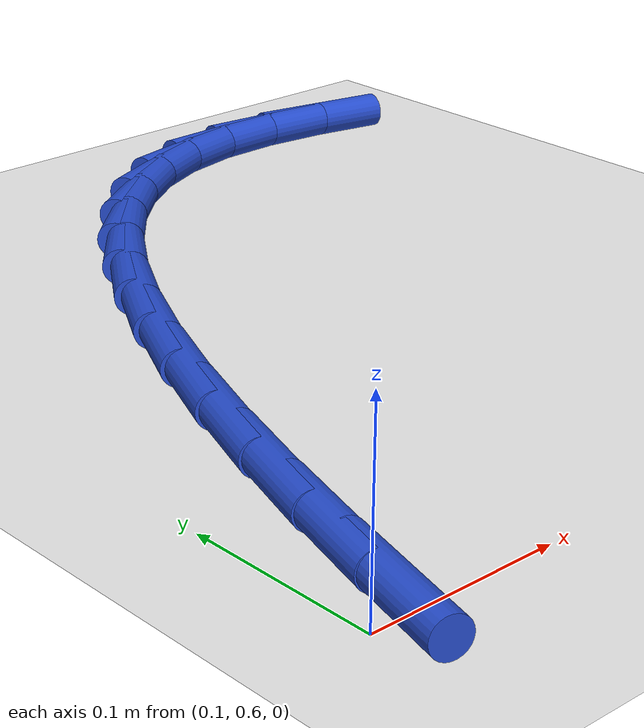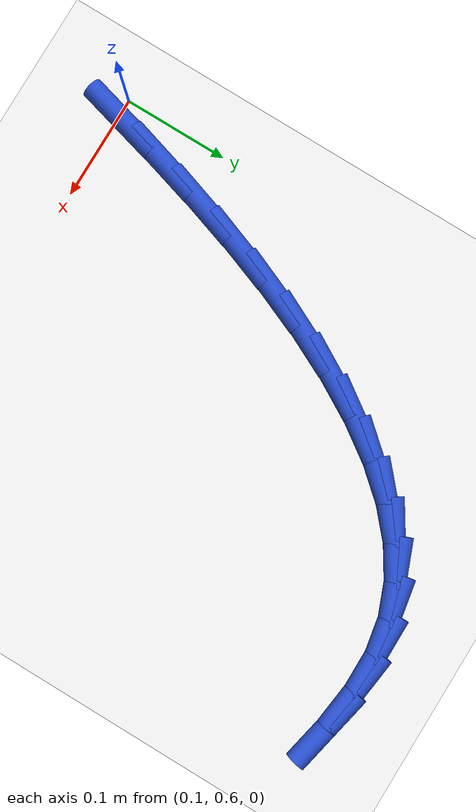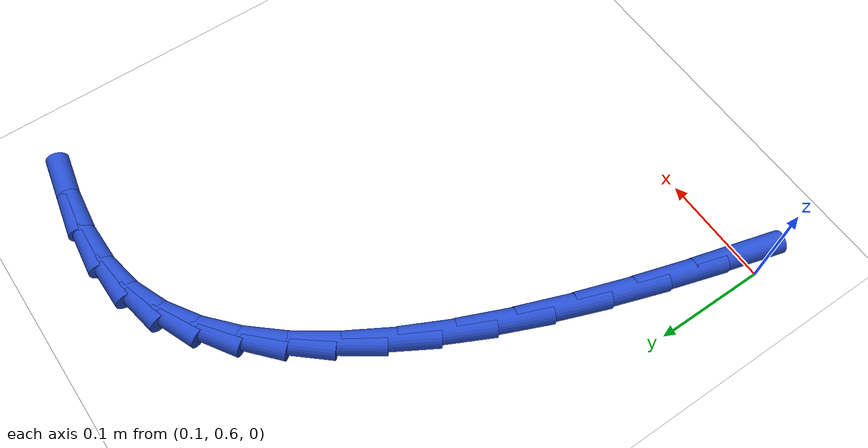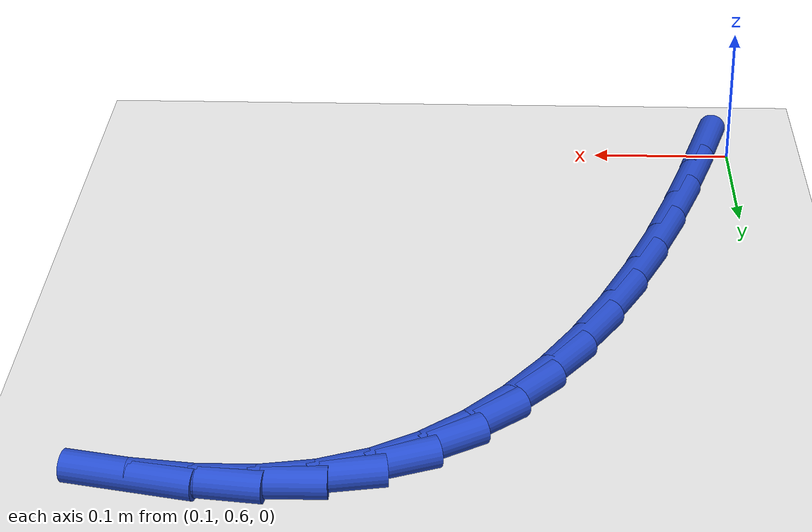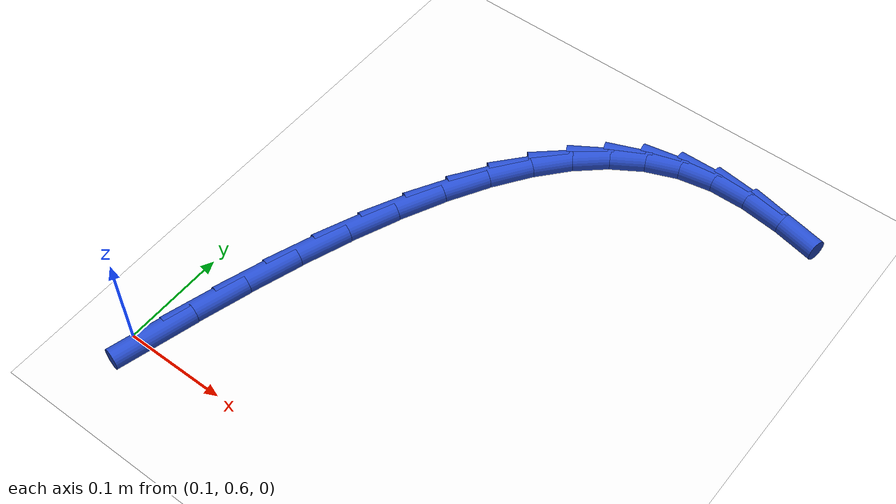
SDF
<sdf version="1.6">
 <world name="default">
  <model name="ground_plane">
   <static>1</static>
   <link name="link">
    <collision name="collision">
     <geometry><plane><normal>0 0 1</normal><size>100 100</size></plane></geometry>
     <surface><friction><ode><mu>100</mu><mu2>50</mu2></ode></friction></surface>
    </collision>
    <visual name="visual">
     <cast_shadows>0</cast_shadows>
     <geometry><plane><normal>0 0 1</normal><size>100 100</size></plane></geometry>
     <material>
      <script><uri>file://media/materials/scripts/gazebo.material</uri><name>Gazebo/WhiteGlow</name></script>
     </material>
    </visual>
   </link>
  </model>
  <model name="line">
   <link name="link_13">
    <pose>0.11942591130032462 0.6065291137821713 0.01 0 1.57 1.3052156974553881</pose>
    <collision name="collision">
     <geometry><cylinder><radius>0.01</radius><length>0.08</length></cylinder></geometry>
    </collision>
    <visual name="visual">
     <material>
      <script><name>Gazebo/Blue</name><uri>file://media/materials/scripts/gazebo.material</uri></script>
     </material>
     <geometry><cylinder><radius>0.01</radius><length>0.08</length></cylinder></geometry>
    </visual>
   </link>
   <link name="link_14">
    <pose>0.1332842068850838 0.6574775976927597 0.01 0 1.57 1.281837744129562</pose>
    <collision name="collision">
     <geometry><cylinder><radius>0.01</radius><length>0.08</length></cylinder></geometry>
    </collision>
    <visual name="visual">
     <material>
      <script><name>Gazebo/Blue</name><uri>file://media/materials/scripts/gazebo.material</uri></script>
     </material>
     <geometry><cylinder><radius>0.01</radius><length>0.08</length></cylinder></geometry>
    </visual>
   </link>
   <link name="link_15">
    <pose>0.1480949459802266 0.7072986074301257 0.01 0 1.57 1.252556622742605</pose>
    <collision name="collision">
     <geometry><cylinder><radius>0.01</radius><length>0.08</length></cylinder></geometry>
    </collision>
    <visual name="visual">
     <material>
      <script><name>Gazebo/Blue</name><uri>file://media/materials/scripts/gazebo.material</uri></script>
     </material>
     <geometry><cylinder><radius>0.01</radius><length>0.08</length></cylinder></geometry>
    </visual>
   </link>
   <link name="link_16">
    <pose>0.16398013388859134 0.7555178152556951 0.01 0 1.57 1.2162505183375831</pose>
    <collision name="collision">
     <geometry><cylinder><radius>0.01</radius><length>0.08</length></cylinder></geometry>
    </collision>
    <visual name="visual">
     <material>
      <script><name>Gazebo/Blue</name><uri>file://media/materials/scripts/gazebo.material</uri></script>
     </material>
     <geometry><cylinder><radius>0.01</radius><length>0.08</length></cylinder></geometry>
    </visual>
   </link>
   <link name="link_17">
    <pose>0.18106177591301653 0.8016608934308941 0.01 0 1.57 1.171391261262714</pose>
    <collision name="collision">
     <geometry><cylinder><radius>0.01</radius><length>0.08</length></cylinder></geometry>
    </collision>
    <visual name="visual">
     <material>
      <script><name>Gazebo/Blue</name><uri>file://media/materials/scripts/gazebo.material</uri></script>
     </material>
     <geometry><cylinder><radius>0.01</radius><length>0.08</length></cylinder></geometry>
    </visual>
   </link>
   <link name="link_18">
    <pose>0.19946187735634047 0.8452535142171483 0.01 0 1.57 1.1159297989686674</pose>
    <collision name="collision">
     <geometry><cylinder><radius>0.01</radius><length>0.08</length></cylinder></geometry>
    </collision>
    <visual name="visual">
     <material>
      <script><name>Gazebo/Blue</name><uri>file://media/materials/scripts/gazebo.material</uri></script>
     </material>
     <geometry><cylinder><radius>0.01</radius><length>0.08</length></cylinder></geometry>
    </visual>
   </link>
   <link name="link_19">
    <pose>0.2193024435214015 0.8858213498758838 0.01 0 1.57 1.0471692439644458</pose>
    <collision name="collision">
     <geometry><cylinder><radius>0.01</radius><length>0.08</length></cylinder></geometry>
    </collision>
    <visual name="visual">
     <material>
      <script><name>Gazebo/Blue</name><uri>file://media/materials/scripts/gazebo.material</uri></script>
     </material>
     <geometry><cylinder><radius>0.01</radius><length>0.08</length></cylinder></geometry>
    </visual>
   </link>
   <link name="link_20">
    <pose>0.24070547971103817 0.9228900726685271 0.01 0 1.57 0.9616779853916648</pose>
    <collision name="collision">
     <geometry><cylinder><radius>0.01</radius><length>0.08</length></cylinder></geometry>
    </collision>
    <visual name="visual">
     <material>
      <script><name>Gazebo/Blue</name><uri>file://media/materials/scripts/gazebo.material</uri></script>
     </material>
     <geometry><cylinder><radius>0.01</radius><length>0.08</length></cylinder></geometry>
    </visual>
   </link>
   <link name="link_21">
    <pose>0.2637929912280888 0.9559853548565036 0.01 0 1.57 0.8553885485651384</pose>
    <collision name="collision">
     <geometry><cylinder><radius>0.01</radius><length>0.08</length></cylinder></geometry>
    </collision>
    <visual name="visual">
     <material>
      <script><name>Gazebo/Blue</name><uri>file://media/materials/scripts/gazebo.material</uri></script>
     </material>
     <geometry><cylinder><radius>0.01</radius><length>0.08</length></cylinder></geometry>
    </visual>
   </link>
   <link name="link_22">
    <pose>0.2886869833753918 0.9846328687012398 0.01 0 1.57 0.7242048431492434</pose>
    <collision name="collision">
     <geometry><cylinder><radius>0.01</radius><length>0.08</length></cylinder></geometry>
    </collision>
    <visual name="visual">
     <material>
      <script><name>Gazebo/Blue</name><uri>file://media/materials/scripts/gazebo.material</uri></script>
     </material>
     <geometry><cylinder><radius>0.01</radius><length>0.08</length></cylinder></geometry>
    </visual>
   </link>
   <link name="link_23">
    <pose>0.3155094614557855 1.0083582864641614 0.01 0 1.57 0.5656261777214222</pose>
    <collision name="collision">
     <geometry><cylinder><radius>0.01</radius><length>0.08</length></cylinder></geometry>
    </collision>
    <visual name="visual">
     <material>
      <script><name>Gazebo/Blue</name><uri>file://media/materials/scripts/gazebo.material</uri></script>
     </material>
     <geometry><cylinder><radius>0.01</radius><length>0.08</length></cylinder></geometry>
    </visual>
   </link>
   <link name="link_24">
    <pose>0.3443824307721084 1.0266872804066944 0.01 0 1.57 0.38161815619963496</pose>
    <collision name="collision">
     <geometry><cylinder><radius>0.01</radius><length>0.08</length></cylinder></geometry>
    </collision>
    <visual name="visual">
     <material>
      <script><name>Gazebo/Blue</name><uri>file://media/materials/scripts/gazebo.material</uri></script>
     </material>
     <geometry><cylinder><radius>0.01</radius><length>0.08</length></cylinder></geometry>
    </visual>
   </link>
   <link name="link_25">
    <pose>0.37542789662719867 1.039145522790265 0.01 0 1.57 0.18335152184600492</pose>
    <collision name="collision">
     <geometry><cylinder><radius>0.01</radius><length>0.08</length></cylinder></geometry>
    </collision>
    <visual name="visual">
     <material>
      <script><name>Gazebo/Blue</name><uri>file://media/materials/scripts/gazebo.material</uri></script>
     </material>
     <geometry><cylinder><radius>0.01</radius><length>0.08</length></cylinder></geometry>
    </visual>
   </link>
   <link name="link_26">
    <pose>0.40878972322557533 1.0453319449310285 0.01 0 1.57 0.0078222710358069</pose>
    <collision name="collision">
     <geometry><cylinder><radius>0.01</radius><length>0.08</length></cylinder></geometry>
    </collision>
    <visual name="visual">
     <material>
      <script><name>Gazebo/Blue</name><uri>file://media/materials/scripts/gazebo.material</uri></script>
     </material>
     <geometry><cylinder><radius>0.01</radius><length>0.08</length></cylinder></geometry>
    </visual>
   </link>
   <link name="link_27">
    <pose>0.4448410712097215 1.045613954098042 0.01 0 1.57 -0.12158621610724099</pose>
    <collision name="collision">
     <geometry><cylinder><radius>0.01</radius><length>0.08</length></cylinder></geometry>
    </collision>
    <visual name="visual">
     <material>
      <script><name>Gazebo/Blue</name><uri>file://media/materials/scripts/gazebo.material</uri></script>
     </material>
     <geometry><cylinder><radius>0.01</radius><length>0.08</length></cylinder></geometry>
    </visual>
   </link>
   <link name="link_28">
    <pose>0.48409204551058005 1.0408179197383294 0.01 0 1.57 -0.20742512681563874</pose>
    <collision name="collision">
     <geometry><cylinder><radius>0.01</radius><length>0.08</length></cylinder></geometry>
    </collision>
    <visual name="visual">
     <material>
      <script><name>Gazebo/Blue</name><uri>file://media/materials/scripts/gazebo.material</uri></script>
     </material>
     <geometry><cylinder><radius>0.01</radius><length>0.08</length></cylinder></geometry>
    </visual>
   </link>
  </model>
 </world>
</sdf>
